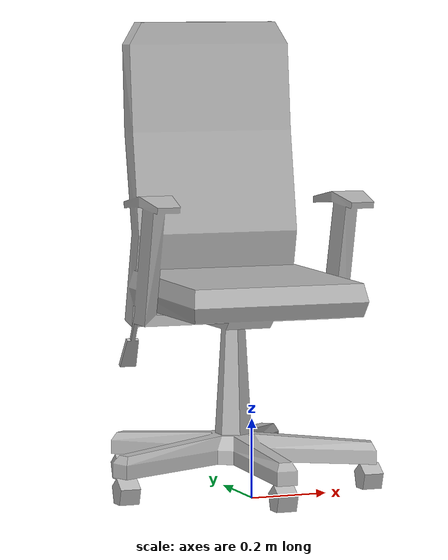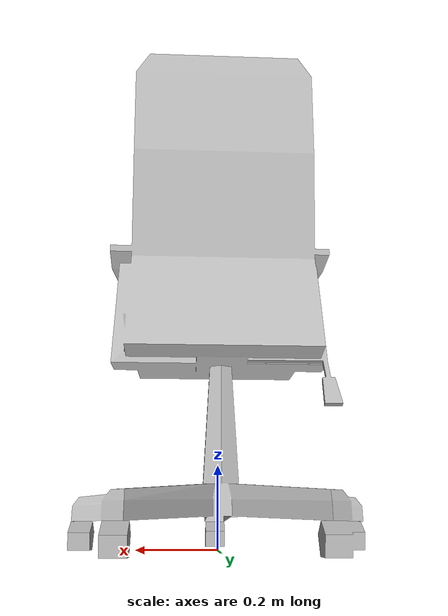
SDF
<?xml version='1.0' encoding='utf-8'?>
<sdf version="1.6">
  <model name="OfficeChairBlue">
   <static>true</static>
    <link name="body">
      <pose>0 0 0 0 0 0</pose>

      <visual name="visual">
        <geometry>
          <mesh>
            <uri>model://OfficeChairBlue/meshes/OfficeChairBlue.obj</uri>
          </mesh>
        </geometry>
      </visual>

      <collision name="collision">
        <geometry>
          <mesh>
            <uri>model://OfficeChairBlue/meshes/OfficeChairBlue_Col.obj</uri>
          </mesh>
        </geometry>
      </collision>

    </link>
  </model>
</sdf>
